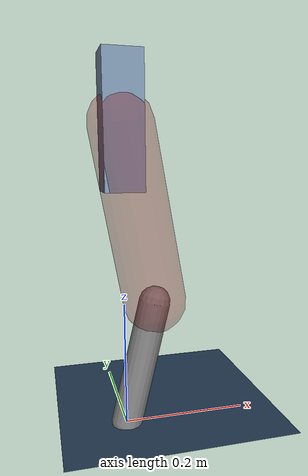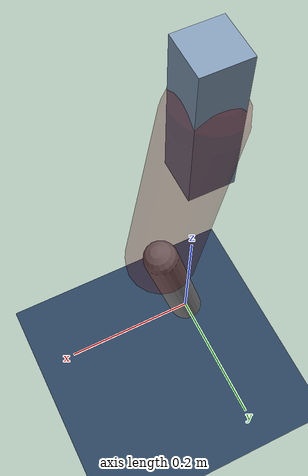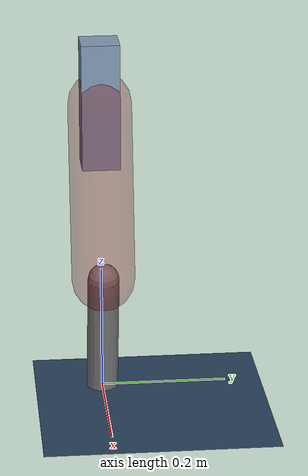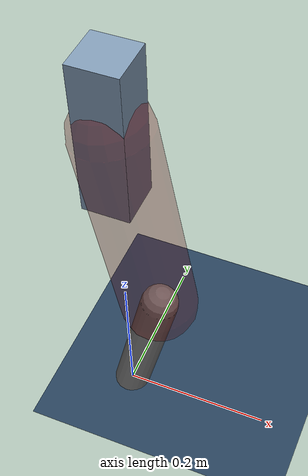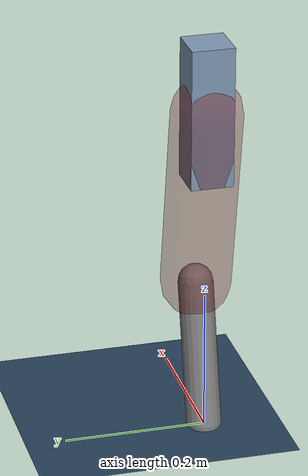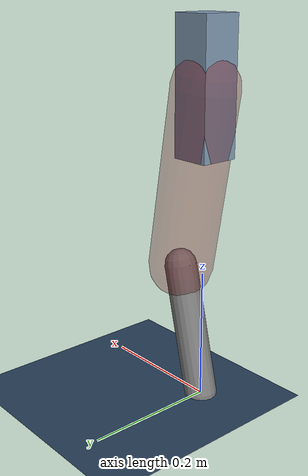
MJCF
<mujoco model="Hopper2D">
	<compiler inertiafromgeom="true" angle="radian" />
	<option timestep="0.001" integrator="implicit" cone="elliptic" solver="Newton" tolerance="1e-10" />

	<default>
		<geom contype="1" conaffinity="1" condim="3" friction="2 0.005 0.0001" solref="0.005 1" />
		<joint limited="true" damping="0.1" />
	</default>

	<asset>
		<texture name="skybox" type="skybox" builtin="gradient" rgb1=".4 .6 .8" rgb2="0 0 0" width="800" height="800" />
		<texture name="grid" type="2d" builtin="checker" rgb1=".1 .2 .3" rgb2=".2 .3 .4" width="300" height="300" mark="edge" markrgb=".2 .3 .4" />
		<material name="ground" texture="grid" texrepeat="1 1" texuniform="true" reflectance="0.1" />
		<material name="leg" rgba="0.5 0.6 0.7 1" />
	</asset>

	<worldbody>

		<geom name="floor" type="plane" size="5 5 0.25" material="ground" />

		<light directional="false" diffuse="0.8 0.8 0.8" specular="0.3 0.3 0.3" pos="0 0 2" dir="0 0 -1" />
		<light mode="targetbodycom" target="base" directional="false" diffuse="0.8 0.8 0.8" specular="0.3 0.3 0.3" pos="0 0 2" dir="0 0 -1" />

		<camera name="fixed" pos="0 -2 1" xyaxes="1 0 0 0 0 1" />
		<camera name="tracking" mode="trackcom" pos="0 -3 1" />

		<body name="root" pos="0 0 0.4763691381532692">
			<joint name="slide_x" type="slide" axis="1 0 0" range="-100 100" />
			<joint name="slide_z" type="slide" axis="0 0 1" range="0 10" />

			<body name="base" pos="0 0 0">
				<geom name="torso" type="box" size="0.03 0.03 0.1" mass="2.489" material="leg" />

				<body name="link1" pos="0 0 0" euler="0 1.3959495597121012 0">
					<joint type="hinge" axis="0 -1 0" pos="0 0 0" name="hinge1" limited="true" range="-3.14 3.14" stiffness="0" damping="0.1" />
					<geom name="thigh" type="capsule" fromto="0 0 0 0.27884278315036837 0 0" size="0.05" rgba="0.5 0 0 0.3" mass="0.9320755145059945" />

					<body name="link2" pos="0.27884278315036837 0 0" euler="0 0.4107668148183544 0">
						<joint type="hinge" axis="0 -1 0" pos="0 0 0" name="hinge2" limited="true" range="-3.14 3.14" stiffness="0" damping="0.1" />
						<geom name="shank" type="capsule" fromto="0 0 0 0.20752635500290081 0 0" size="0.025" mass="0.40722108400232065" />

					</body>
				</body>
			</body>
		</body>
	</worldbody>

	<actuator>
		<motor name="torque1" joint="hinge1" ctrlrange="-73.02671306226424 73.02671306226424" ctrllimited="true" gear="1" />
		<motor name="torque2" joint="hinge2" ctrlrange="-96.30113886339221 96.30113886339221" ctrllimited="true" gear="1" />
	</actuator>
</mujoco>
